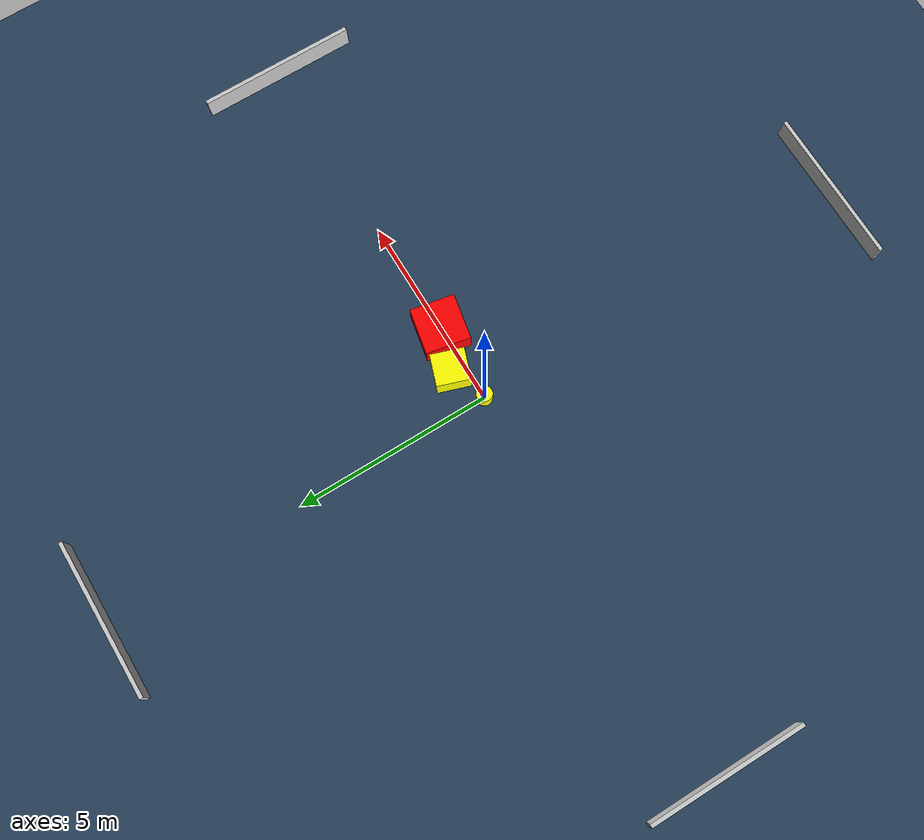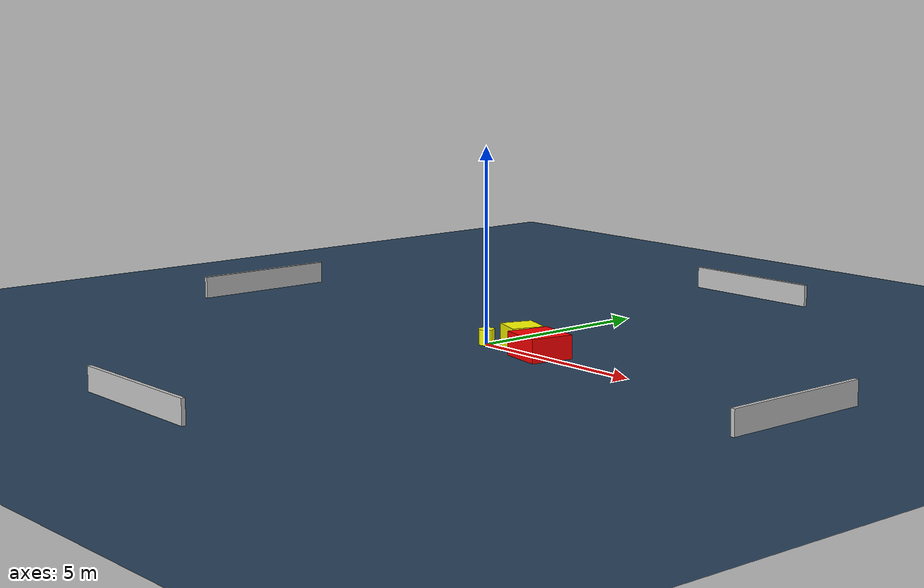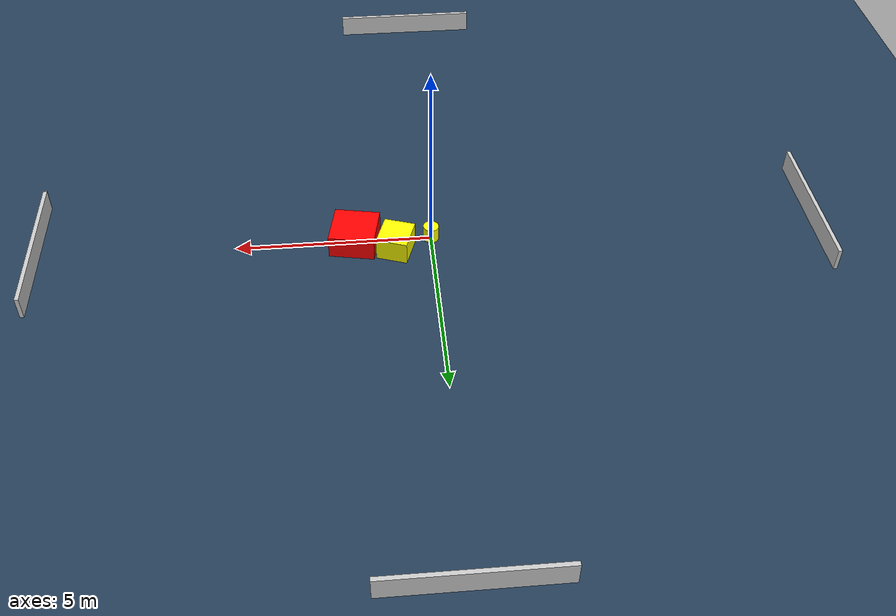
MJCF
<?xml version="1.0" ?>
<mujoco model="generated_environment">
  <option timestep="0.01" integrator="RK4" cone="elliptic"/>
  <default>
    <geom density="1"/>
  </default>
  <asset>
    <texture builtin="gradient" height="3072" name="skybox" rgb1="0.3 0.5 0.7" rgb2="0 0 0" type="skybox" width="512"/>
    <texture builtin="checker" height="300" name="groundplane" rgb1="0.2 0.3 0.4" rgb2="0.1 0.2 0.3" type="2d" width="300"/>
    <material name="groundplane" reflectance="0.2" texrepeat="5 5" texture="groundplane"/>
  </asset>
  <worldbody>
    <light dir="0 0 -1" directional="true" pos="0 0 1.5"/>
    <geom condim="3" friction="0.5 0.005 0.001" material="groundplane" name="floor" pos="0 0 0" size="0 0 0.05" type="plane"/>
    <body name="walls">
      <geom name="wall_1" condim="4" pos="-10.0 0.0 0.3" rgba="0.800000011920929 0.800000011920929 0.800000011920929 1.0" size="0.05 2.0 0.3" type="box"/>
      <geom name="wall_2" condim="4" pos="10.0 0.0 0.3" rgba="0.800000011920929 0.800000011920929 0.800000011920929 1.0" size="0.05 2.0 0.3" type="box"/>
      <geom name="wall_3" condim="4" pos="0.0 -10.0 0.3" rgba="0.800000011920929 0.800000011920929 0.800000011920929 1.0" size="2.0 0.05 0.3" type="box"/>
      <geom name="wall_4" condim="4" pos="0.0 10.0 0.3" rgba="0.800000011920929 0.800000011920929 0.800000011920929 1.0" size="2.0 0.05 0.3" type="box"/>
    </body>
    <body name="robot">
      <joint name="joint_x" type="slide" pos="0 0 0" axis="1 0 0"/>
      <joint name="joint_y" type="slide" pos="0 0 0" axis="0 1 0"/>
      <geom name="robot" type="cylinder" pos="0.0 0.0 0.2" size="0.2 0.2 0.0" mass="5.0" friction="1.0 0.005 0.0001" condim="4" rgba="1.0 1.0 0.0 1.0"/>
    </body>
    <body name="obstacle_1_movable">
      <geom name="obstacle_1_movable" condim="4" pos="0.9261590250293655 0.36877597070748785 0.3" euler="0 0 251.12808942206547" friction="0.0 0.005 0.001" rgba="1.0 1.0 0.0 1.0" size="0.42140364497357286 0.3995724823386775 0.3" type="box" mass="0.1"/>
      <joint type="free"/>
    </body>
    <body name="obstacle_2_static">
      <geom name="obstacle_2_static" condim="4" pos="1.959198549578252 0.02607437296860244 0.3" euler="0 0 79.20748954601667" friction="0.0 0.005 0.001" rgba="1.0 0.0 0.0 1.0" size="0.5616997954551075 0.579904873526417 0.3" type="box"/>
    </body>
  </worldbody>
  <actuator>
    <motor name="actuator_x" joint="joint_x" gear="1" ctrlrange="-1 1"/>
    <motor name="actuator_y" joint="joint_y" gear="1" ctrlrange="-1 1"/>
  </actuator>
</mujoco>
